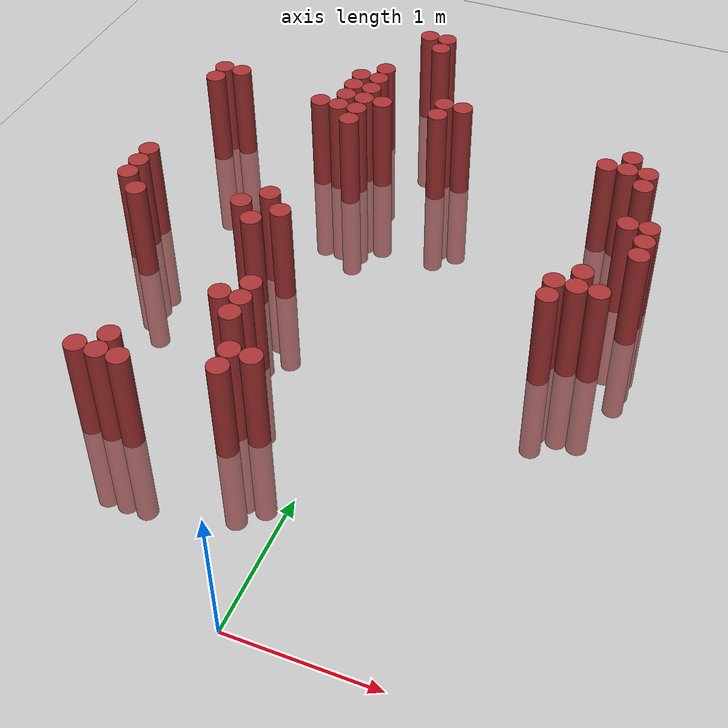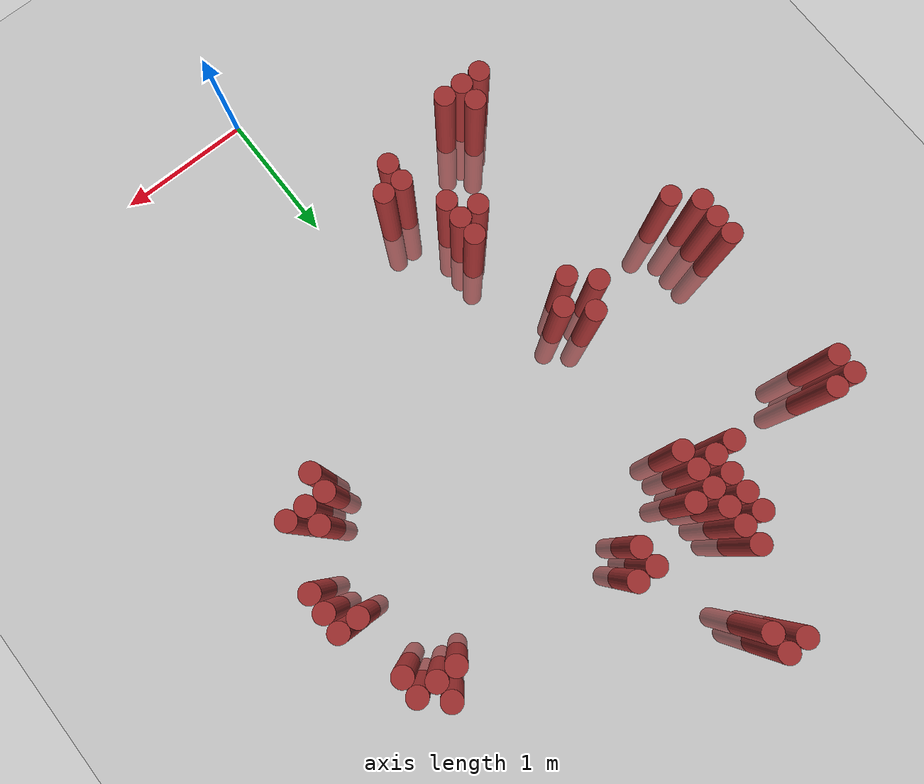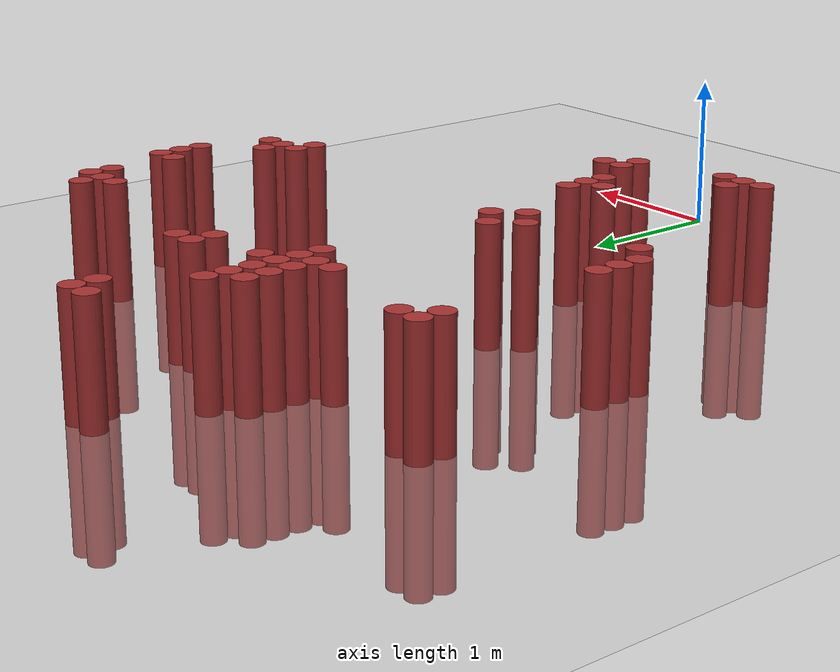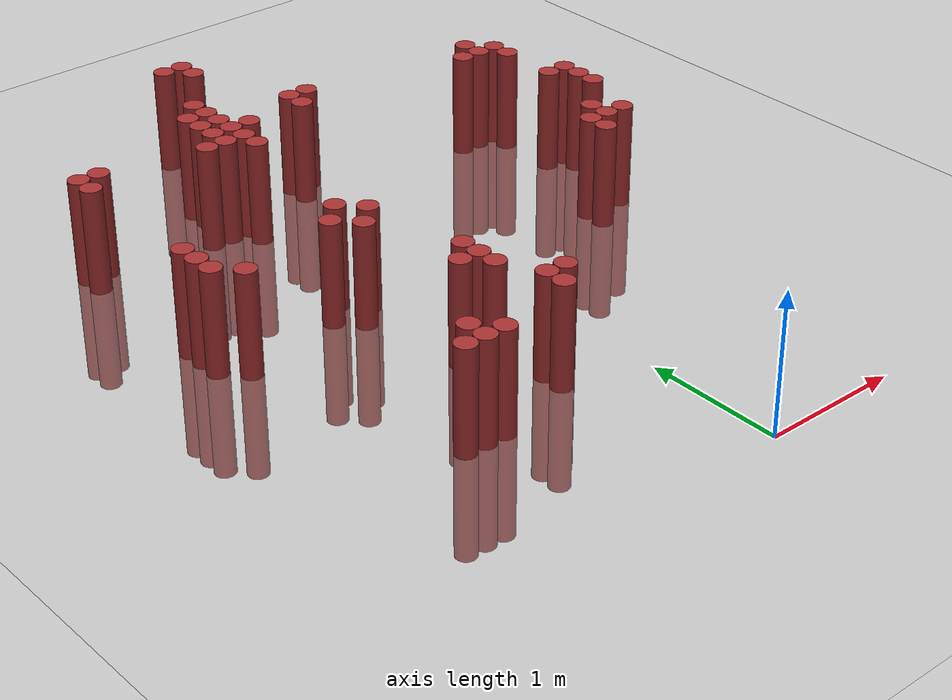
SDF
<sdf version="1.6">
 <world name="default">
  <model name="ground_plane">
   <static>1</static>
   <link name="link">
    <collision name="collision">
     <geometry><plane><normal>0 0 1</normal><size>100 100</size></plane></geometry>
     <surface><friction><ode><mu>100</mu><mu2>50</mu2></ode></friction></surface>
    </collision>
    <visual name="visual">
     <cast_shadows>0</cast_shadows>
     <geometry><plane><normal>0 0 1</normal><size>100 100</size></plane></geometry>
     <material>
      <script><uri>file://media/materials/scripts/gazebo.material</uri><name>Gazebo/Grey</name></script>
     </material>
    </visual>
   </link>
  </model>
  <model name="unit_cylinder_317">
   <static>1</static>
   <pose>-2.075000 2.725000 0.000000 0.000000 0.000000 0.000000</pose>
   <link name="link">
    <inertial>
     <mass>1</mass>
     <inertia><ixx>0.145833</ixx><ixy>0</ixy><ixz>0</ixz><iyy>0.145833</iyy><iyz>0</iyz><izz>0.125</izz></inertia>
    </inertial>
    <collision name="collision">
     <geometry><cylinder><radius>0.075000</radius><length>1.5</length></cylinder></geometry>
    </collision>
    <visual name="visual">
     <geometry><cylinder><radius>0.075000</radius><length>1.5</length></cylinder></geometry>
     <material>
      <ambient>0.648000 0.192000 0.192000 1</ambient>
      <diffuse>0.648000 0.192000 0.192000 1</diffuse>
     </material>
     <material>
      <script><name>Gazebo/Grey</name><uri>file://media/materials/scripts/gazebo.material</uri></script>
     </material>
    </visual>
   </link>
  </model>
  <model name="unit_cylinder_318">
   <static>1</static>
   <pose>-2.075000 2.875000 0.000000 0.000000 0.000000 0.000000</pose>
   <link name="link">
    <inertial>
     <mass>1</mass>
     <inertia><ixx>0.145833</ixx><ixy>0</ixy><ixz>0</ixz><iyy>0.145833</iyy><iyz>0</iyz><izz>0.125</izz></inertia>
    </inertial>
    <collision name="collision">
     <geometry><cylinder><radius>0.075000</radius><length>1.5</length></cylinder></geometry>
    </collision>
    <visual name="visual">
     <geometry><cylinder><radius>0.075000</radius><length>1.5</length></cylinder></geometry>
     <material>
      <ambient>0.648000 0.192000 0.192000 1</ambient>
      <diffuse>0.648000 0.192000 0.192000 1</diffuse>
     </material>
     <material>
      <script><name>Gazebo/Grey</name><uri>file://media/materials/scripts/gazebo.material</uri></script>
     </material>
    </visual>
   </link>
  </model>
  <model name="unit_cylinder_319">
   <static>1</static>
   <pose>-2.075000 3.025000 0.000000 0.000000 0.000000 0.000000</pose>
   <link name="link">
    <inertial>
     <mass>1</mass>
     <inertia><ixx>0.145833</ixx><ixy>0</ixy><ixz>0</ixz><iyy>0.145833</iyy><iyz>0</iyz><izz>0.125</izz></inertia>
    </inertial>
    <collision name="collision">
     <geometry><cylinder><radius>0.075000</radius><length>1.5</length></cylinder></geometry>
    </collision>
    <visual name="visual">
     <geometry><cylinder><radius>0.075000</radius><length>1.5</length></cylinder></geometry>
     <material>
      <ambient>0.648000 0.192000 0.192000 1</ambient>
      <diffuse>0.648000 0.192000 0.192000 1</diffuse>
     </material>
     <material>
      <script><name>Gazebo/Grey</name><uri>file://media/materials/scripts/gazebo.material</uri></script>
     </material>
    </visual>
   </link>
  </model>
  <model name="unit_cylinder_320">
   <static>1</static>
   <pose>-2.075000 4.075000 0.000000 0.000000 0.000000 0.000000</pose>
   <link name="link">
    <inertial>
     <mass>1</mass>
     <inertia><ixx>0.145833</ixx><ixy>0</ixy><ixz>0</ixz><iyy>0.145833</iyy><iyz>0</iyz><izz>0.125</izz></inertia>
    </inertial>
    <collision name="collision">
     <geometry><cylinder><radius>0.075000</radius><length>1.5</length></cylinder></geometry>
    </collision>
    <visual name="visual">
     <geometry><cylinder><radius>0.075000</radius><length>1.5</length></cylinder></geometry>
     <material>
      <ambient>0.648000 0.192000 0.192000 1</ambient>
      <diffuse>0.648000 0.192000 0.192000 1</diffuse>
     </material>
     <material>
      <script><name>Gazebo/Grey</name><uri>file://media/materials/scripts/gazebo.material</uri></script>
     </material>
    </visual>
   </link>
  </model>
  <model name="unit_cylinder_321">
   <static>1</static>
   <pose>-2.075000 4.225000 0.000000 0.000000 0.000000 0.000000</pose>
   <link name="link">
    <inertial>
     <mass>1</mass>
     <inertia><ixx>0.145833</ixx><ixy>0</ixy><ixz>0</ixz><iyy>0.145833</iyy><iyz>0</iyz><izz>0.125</izz></inertia>
    </inertial>
    <collision name="collision">
     <geometry><cylinder><radius>0.075000</radius><length>1.5</length></cylinder></geometry>
    </collision>
    <visual name="visual">
     <geometry><cylinder><radius>0.075000</radius><length>1.5</length></cylinder></geometry>
     <material>
      <ambient>0.648000 0.192000 0.192000 1</ambient>
      <diffuse>0.648000 0.192000 0.192000 1</diffuse>
     </material>
     <material>
      <script><name>Gazebo/Grey</name><uri>file://media/materials/scripts/gazebo.material</uri></script>
     </material>
    </visual>
   </link>
  </model>
  <model name="unit_cylinder_322">
   <static>1</static>
   <pose>-1.925000 2.575000 0.000000 0.000000 0.000000 0.000000</pose>
   <link name="link">
    <inertial>
     <mass>1</mass>
     <inertia><ixx>0.145833</ixx><ixy>0</ixy><ixz>0</ixz><iyy>0.145833</iyy><iyz>0</iyz><izz>0.125</izz></inertia>
    </inertial>
    <collision name="collision">
     <geometry><cylinder><radius>0.075000</radius><length>1.5</length></cylinder></geometry>
    </collision>
    <visual name="visual">
     <geometry><cylinder><radius>0.075000</radius><length>1.5</length></cylinder></geometry>
     <material>
      <ambient>0.648000 0.192000 0.192000 1</ambient>
      <diffuse>0.648000 0.192000 0.192000 1</diffuse>
     </material>
     <material>
      <script><name>Gazebo/Grey</name><uri>file://media/materials/scripts/gazebo.material</uri></script>
     </material>
    </visual>
   </link>
  </model>
  <model name="unit_cylinder_323">
   <static>1</static>
   <pose>-1.925000 4.225000 0.000000 0.000000 0.000000 0.000000</pose>
   <link name="link">
    <inertial>
     <mass>1</mass>
     <inertia><ixx>0.145833</ixx><ixy>0</ixy><ixz>0</ixz><iyy>0.145833</iyy><iyz>0</iyz><izz>0.125</izz></inertia>
    </inertial>
    <collision name="collision">
     <geometry><cylinder><radius>0.075000</radius><length>1.5</length></cylinder></geometry>
    </collision>
    <visual name="visual">
     <geometry><cylinder><radius>0.075000</radius><length>1.5</length></cylinder></geometry>
     <material>
      <ambient>0.648000 0.192000 0.192000 1</ambient>
      <diffuse>0.648000 0.192000 0.192000 1</diffuse>
     </material>
     <material>
      <script><name>Gazebo/Grey</name><uri>file://media/materials/scripts/gazebo.material</uri></script>
     </material>
    </visual>
   </link>
  </model>
  <model name="unit_cylinder_331">
   <static>1</static>
   <pose>-1.475000 1.075000 0.000000 0.000000 0.000000 0.000000</pose>
   <link name="link">
    <inertial>
     <mass>1</mass>
     <inertia><ixx>0.145833</ixx><ixy>0</ixy><ixz>0</ixz><iyy>0.145833</iyy><iyz>0</iyz><izz>0.125</izz></inertia>
    </inertial>
    <collision name="collision">
     <geometry><cylinder><radius>0.075000</radius><length>1.5</length></cylinder></geometry>
    </collision>
    <visual name="visual">
     <geometry><cylinder><radius>0.075000</radius><length>1.5</length></cylinder></geometry>
     <material>
      <ambient>0.648000 0.192000 0.192000 1</ambient>
      <diffuse>0.648000 0.192000 0.192000 1</diffuse>
     </material>
     <material>
      <script><name>Gazebo/Grey</name><uri>file://media/materials/scripts/gazebo.material</uri></script>
     </material>
    </visual>
   </link>
  </model>
  <model name="unit_cylinder_333">
   <static>1</static>
   <pose>-1.325000 1.075000 0.000000 0.000000 0.000000 0.000000</pose>
   <link name="link">
    <inertial>
     <mass>1</mass>
     <inertia><ixx>0.145833</ixx><ixy>0</ixy><ixz>0</ixz><iyy>0.145833</iyy><iyz>0</iyz><izz>0.125</izz></inertia>
    </inertial>
    <collision name="collision">
     <geometry><cylinder><radius>0.075000</radius><length>1.5</length></cylinder></geometry>
    </collision>
    <visual name="visual">
     <geometry><cylinder><radius>0.075000</radius><length>1.5</length></cylinder></geometry>
     <material>
      <ambient>0.648000 0.192000 0.192000 1</ambient>
      <diffuse>0.648000 0.192000 0.192000 1</diffuse>
     </material>
     <material>
      <script><name>Gazebo/Grey</name><uri>file://media/materials/scripts/gazebo.material</uri></script>
     </material>
    </visual>
   </link>
  </model>
  <model name="unit_cylinder_334">
   <static>1</static>
   <pose>-1.325000 1.225000 0.000000 0.000000 0.000000 0.000000</pose>
   <link name="link">
    <inertial>
     <mass>1</mass>
     <inertia><ixx>0.145833</ixx><ixy>0</ixy><ixz>0</ixz><iyy>0.145833</iyy><iyz>0</iyz><izz>0.125</izz></inertia>
    </inertial>
    <collision name="collision">
     <geometry><cylinder><radius>0.075000</radius><length>1.5</length></cylinder></geometry>
    </collision>
    <visual name="visual">
     <geometry><cylinder><radius>0.075000</radius><length>1.5</length></cylinder></geometry>
     <material>
      <ambient>0.648000 0.192000 0.192000 1</ambient>
      <diffuse>0.648000 0.192000 0.192000 1</diffuse>
     </material>
     <material>
      <script><name>Gazebo/Grey</name><uri>file://media/materials/scripts/gazebo.material</uri></script>
     </material>
    </visual>
   </link>
  </model>
  <model name="unit_cylinder_337">
   <static>1</static>
   <pose>-1.175000 1.075000 0.000000 0.000000 0.000000 0.000000</pose>
   <link name="link">
    <inertial>
     <mass>1</mass>
     <inertia><ixx>0.145833</ixx><ixy>0</ixy><ixz>0</ixz><iyy>0.145833</iyy><iyz>0</iyz><izz>0.125</izz></inertia>
    </inertial>
    <collision name="collision">
     <geometry><cylinder><radius>0.075000</radius><length>1.5</length></cylinder></geometry>
    </collision>
    <visual name="visual">
     <geometry><cylinder><radius>0.075000</radius><length>1.5</length></cylinder></geometry>
     <material>
      <ambient>0.648000 0.192000 0.192000 1</ambient>
      <diffuse>0.648000 0.192000 0.192000 1</diffuse>
     </material>
     <material>
      <script><name>Gazebo/Grey</name><uri>file://media/materials/scripts/gazebo.material</uri></script>
     </material>
    </visual>
   </link>
  </model>
  <model name="unit_cylinder_338">
   <static>1</static>
   <pose>-1.175000 2.725000 0.000000 0.000000 0.000000 0.000000</pose>
   <link name="link">
    <inertial>
     <mass>1</mass>
     <inertia><ixx>0.145833</ixx><ixy>0</ixy><ixz>0</ixz><iyy>0.145833</iyy><iyz>0</iyz><izz>0.125</izz></inertia>
    </inertial>
    <collision name="collision">
     <geometry><cylinder><radius>0.075000</radius><length>1.5</length></cylinder></geometry>
    </collision>
    <visual name="visual">
     <geometry><cylinder><radius>0.075000</radius><length>1.5</length></cylinder></geometry>
     <material>
      <ambient>0.648000 0.192000 0.192000 1</ambient>
      <diffuse>0.648000 0.192000 0.192000 1</diffuse>
     </material>
     <material>
      <script><name>Gazebo/Grey</name><uri>file://media/materials/scripts/gazebo.material</uri></script>
     </material>
    </visual>
   </link>
  </model>
  <model name="unit_cylinder_339">
   <static>1</static>
   <pose>-1.175000 4.075000 0.000000 0.000000 0.000000 0.000000</pose>
   <link name="link">
    <inertial>
     <mass>1</mass>
     <inertia><ixx>0.145833</ixx><ixy>0</ixy><ixz>0</ixz><iyy>0.145833</iyy><iyz>0</iyz><izz>0.125</izz></inertia>
    </inertial>
    <collision name="collision">
     <geometry><cylinder><radius>0.075000</radius><length>1.5</length></cylinder></geometry>
    </collision>
    <visual name="visual">
     <geometry><cylinder><radius>0.075000</radius><length>1.5</length></cylinder></geometry>
     <material>
      <ambient>0.648000 0.192000 0.192000 1</ambient>
      <diffuse>0.648000 0.192000 0.192000 1</diffuse>
     </material>
     <material>
      <script><name>Gazebo/Grey</name><uri>file://media/materials/scripts/gazebo.material</uri></script>
     </material>
    </visual>
   </link>
  </model>
  <model name="unit_cylinder_342">
   <static>1</static>
   <pose>-1.025000 2.575000 0.000000 0.000000 0.000000 0.000000</pose>
   <link name="link">
    <inertial>
     <mass>1</mass>
     <inertia><ixx>0.145833</ixx><ixy>0</ixy><ixz>0</ixz><iyy>0.145833</iyy><iyz>0</iyz><izz>0.125</izz></inertia>
    </inertial>
    <collision name="collision">
     <geometry><cylinder><radius>0.075000</radius><length>1.5</length></cylinder></geometry>
    </collision>
    <visual name="visual">
     <geometry><cylinder><radius>0.075000</radius><length>1.5</length></cylinder></geometry>
     <material>
      <ambient>0.648000 0.192000 0.192000 1</ambient>
      <diffuse>0.648000 0.192000 0.192000 1</diffuse>
     </material>
     <material>
      <script><name>Gazebo/Grey</name><uri>file://media/materials/scripts/gazebo.material</uri></script>
     </material>
    </visual>
   </link>
  </model>
  <model name="unit_cylinder_343">
   <static>1</static>
   <pose>-1.025000 2.875000 0.000000 0.000000 0.000000 0.000000</pose>
   <link name="link">
    <inertial>
     <mass>1</mass>
     <inertia><ixx>0.145833</ixx><ixy>0</ixy><ixz>0</ixz><iyy>0.145833</iyy><iyz>0</iyz><izz>0.125</izz></inertia>
    </inertial>
    <collision name="collision">
     <geometry><cylinder><radius>0.075000</radius><length>1.5</length></cylinder></geometry>
    </collision>
    <visual name="visual">
     <geometry><cylinder><radius>0.075000</radius><length>1.5</length></cylinder></geometry>
     <material>
      <ambient>0.648000 0.192000 0.192000 1</ambient>
      <diffuse>0.648000 0.192000 0.192000 1</diffuse>
     </material>
     <material>
      <script><name>Gazebo/Grey</name><uri>file://media/materials/scripts/gazebo.material</uri></script>
     </material>
    </visual>
   </link>
  </model>
  <model name="unit_cylinder_344">
   <static>1</static>
   <pose>-1.025000 4.075000 0.000000 0.000000 0.000000 0.000000</pose>
   <link name="link">
    <inertial>
     <mass>1</mass>
     <inertia><ixx>0.145833</ixx><ixy>0</ixy><ixz>0</ixz><iyy>0.145833</iyy><iyz>0</iyz><izz>0.125</izz></inertia>
    </inertial>
    <collision name="collision">
     <geometry><cylinder><radius>0.075000</radius><length>1.5</length></cylinder></geometry>
    </collision>
    <visual name="visual">
     <geometry><cylinder><radius>0.075000</radius><length>1.5</length></cylinder></geometry>
     <material>
      <ambient>0.648000 0.192000 0.192000 1</ambient>
      <diffuse>0.648000 0.192000 0.192000 1</diffuse>
     </material>
     <material>
      <script><name>Gazebo/Grey</name><uri>file://media/materials/scripts/gazebo.material</uri></script>
     </material>
    </visual>
   </link>
  </model>
  <model name="unit_cylinder_345">
   <static>1</static>
   <pose>-1.025000 4.225000 0.000000 0.000000 0.000000 0.000000</pose>
   <link name="link">
    <inertial>
     <mass>1</mass>
     <inertia><ixx>0.145833</ixx><ixy>0</ixy><ixz>0</ixz><iyy>0.145833</iyy><iyz>0</iyz><izz>0.125</izz></inertia>
    </inertial>
    <collision name="collision">
     <geometry><cylinder><radius>0.075000</radius><length>1.5</length></cylinder></geometry>
    </collision>
    <visual name="visual">
     <geometry><cylinder><radius>0.075000</radius><length>1.5</length></cylinder></geometry>
     <material>
      <ambient>0.648000 0.192000 0.192000 1</ambient>
      <diffuse>0.648000 0.192000 0.192000 1</diffuse>
     </material>
     <material>
      <script><name>Gazebo/Grey</name><uri>file://media/materials/scripts/gazebo.material</uri></script>
     </material>
    </visual>
   </link>
  </model>
  <model name="unit_cylinder_346">
   <static>1</static>
   <pose>-1.025000 4.375000 0.000000 0.000000 0.000000 0.000000</pose>
   <link name="link">
    <inertial>
     <mass>1</mass>
     <inertia><ixx>0.145833</ixx><ixy>0</ixy><ixz>0</ixz><iyy>0.145833</iyy><iyz>0</iyz><izz>0.125</izz></inertia>
    </inertial>
    <collision name="collision">
     <geometry><cylinder><radius>0.075000</radius><length>1.5</length></cylinder></geometry>
    </collision>
    <visual name="visual">
     <geometry><cylinder><radius>0.075000</radius><length>1.5</length></cylinder></geometry>
     <material>
      <ambient>0.648000 0.192000 0.192000 1</ambient>
      <diffuse>0.648000 0.192000 0.192000 1</diffuse>
     </material>
     <material>
      <script><name>Gazebo/Grey</name><uri>file://media/materials/scripts/gazebo.material</uri></script>
     </material>
    </visual>
   </link>
  </model>
  <model name="unit_cylinder_347">
   <static>1</static>
   <pose>-1.025000 4.525000 0.000000 0.000000 0.000000 0.000000</pose>
   <link name="link">
    <inertial>
     <mass>1</mass>
     <inertia><ixx>0.145833</ixx><ixy>0</ixy><ixz>0</ixz><iyy>0.145833</iyy><iyz>0</iyz><izz>0.125</izz></inertia>
    </inertial>
    <collision name="collision">
     <geometry><cylinder><radius>0.075000</radius><length>1.5</length></cylinder></geometry>
    </collision>
    <visual name="visual">
     <geometry><cylinder><radius>0.075000</radius><length>1.5</length></cylinder></geometry>
     <material>
      <ambient>0.648000 0.192000 0.192000 1</ambient>
      <diffuse>0.648000 0.192000 0.192000 1</diffuse>
     </material>
     <material>
      <script><name>Gazebo/Grey</name><uri>file://media/materials/scripts/gazebo.material</uri></script>
     </material>
    </visual>
   </link>
  </model>
  <model name="unit_cylinder_348">
   <static>1</static>
   <pose>-0.875000 1.825000 0.000000 0.000000 0.000000 0.000000</pose>
   <link name="link">
    <inertial>
     <mass>1</mass>
     <inertia><ixx>0.145833</ixx><ixy>0</ixy><ixz>0</ixz><iyy>0.145833</iyy><iyz>0</iyz><izz>0.125</izz></inertia>
    </inertial>
    <collision name="collision">
     <geometry><cylinder><radius>0.075000</radius><length>1.5</length></cylinder></geometry>
    </collision>
    <visual name="visual">
     <geometry><cylinder><radius>0.075000</radius><length>1.5</length></cylinder></geometry>
     <material>
      <ambient>0.648000 0.192000 0.192000 1</ambient>
      <diffuse>0.648000 0.192000 0.192000 1</diffuse>
     </material>
     <material>
      <script><name>Gazebo/Grey</name><uri>file://media/materials/scripts/gazebo.material</uri></script>
     </material>
    </visual>
   </link>
  </model>
  <model name="unit_cylinder_349">
   <static>1</static>
   <pose>-0.875000 2.725000 0.000000 0.000000 0.000000 0.000000</pose>
   <link name="link">
    <inertial>
     <mass>1</mass>
     <inertia><ixx>0.145833</ixx><ixy>0</ixy><ixz>0</ixz><iyy>0.145833</iyy><iyz>0</iyz><izz>0.125</izz></inertia>
    </inertial>
    <collision name="collision">
     <geometry><cylinder><radius>0.075000</radius><length>1.5</length></cylinder></geometry>
    </collision>
    <visual name="visual">
     <geometry><cylinder><radius>0.075000</radius><length>1.5</length></cylinder></geometry>
     <material>
      <ambient>0.648000 0.192000 0.192000 1</ambient>
      <diffuse>0.648000 0.192000 0.192000 1</diffuse>
     </material>
     <material>
      <script><name>Gazebo/Grey</name><uri>file://media/materials/scripts/gazebo.material</uri></script>
     </material>
    </visual>
   </link>
  </model>
  <model name="unit_cylinder_350">
   <static>1</static>
   <pose>-0.875000 3.925000 0.000000 0.000000 0.000000 0.000000</pose>
   <link name="link">
    <inertial>
     <mass>1</mass>
     <inertia><ixx>0.145833</ixx><ixy>0</ixy><ixz>0</ixz><iyy>0.145833</iyy><iyz>0</iyz><izz>0.125</izz></inertia>
    </inertial>
    <collision name="collision">
     <geometry><cylinder><radius>0.075000</radius><length>1.5</length></cylinder></geometry>
    </collision>
    <visual name="visual">
     <geometry><cylinder><radius>0.075000</radius><length>1.5</length></cylinder></geometry>
     <material>
      <ambient>0.648000 0.192000 0.192000 1</ambient>
      <diffuse>0.648000 0.192000 0.192000 1</diffuse>
     </material>
     <material>
      <script><name>Gazebo/Grey</name><uri>file://media/materials/scripts/gazebo.material</uri></script>
     </material>
    </visual>
   </link>
  </model>
  <model name="unit_cylinder_351">
   <static>1</static>
   <pose>-0.875000 4.075000 0.000000 0.000000 0.000000 0.000000</pose>
   <link name="link">
    <inertial>
     <mass>1</mass>
     <inertia><ixx>0.145833</ixx><ixy>0</ixy><ixz>0</ixz><iyy>0.145833</iyy><iyz>0</iyz><izz>0.125</izz></inertia>
    </inertial>
    <collision name="collision">
     <geometry><cylinder><radius>0.075000</radius><length>1.5</length></cylinder></geometry>
    </collision>
    <visual name="visual">
     <geometry><cylinder><radius>0.075000</radius><length>1.5</length></cylinder></geometry>
     <material>
      <ambient>0.648000 0.192000 0.192000 1</ambient>
      <diffuse>0.648000 0.192000 0.192000 1</diffuse>
     </material>
     <material>
      <script><name>Gazebo/Grey</name><uri>file://media/materials/scripts/gazebo.material</uri></script>
     </material>
    </visual>
   </link>
  </model>
  <model name="unit_cylinder_352">
   <static>1</static>
   <pose>-0.875000 4.225000 0.000000 0.000000 0.000000 0.000000</pose>
   <link name="link">
    <inertial>
     <mass>1</mass>
     <inertia><ixx>0.145833</ixx><ixy>0</ixy><ixz>0</ixz><iyy>0.145833</iyy><iyz>0</iyz><izz>0.125</izz></inertia>
    </inertial>
    <collision name="collision">
     <geometry><cylinder><radius>0.075000</radius><length>1.5</length></cylinder></geometry>
    </collision>
    <visual name="visual">
     <geometry><cylinder><radius>0.075000</radius><length>1.5</length></cylinder></geometry>
     <material>
      <ambient>0.648000 0.192000 0.192000 1</ambient>
      <diffuse>0.648000 0.192000 0.192000 1</diffuse>
     </material>
     <material>
      <script><name>Gazebo/Grey</name><uri>file://media/materials/scripts/gazebo.material</uri></script>
     </material>
    </visual>
   </link>
  </model>
  <model name="unit_cylinder_353">
   <static>1</static>
   <pose>-0.875000 4.375000 0.000000 0.000000 0.000000 0.000000</pose>
   <link name="link">
    <inertial>
     <mass>1</mass>
     <inertia><ixx>0.145833</ixx><ixy>0</ixy><ixz>0</ixz><iyy>0.145833</iyy><iyz>0</iyz><izz>0.125</izz></inertia>
    </inertial>
    <collision name="collision">
     <geometry><cylinder><radius>0.075000</radius><length>1.5</length></cylinder></geometry>
    </collision>
    <visual name="visual">
     <geometry><cylinder><radius>0.075000</radius><length>1.5</length></cylinder></geometry>
     <material>
      <ambient>0.648000 0.192000 0.192000 1</ambient>
      <diffuse>0.648000 0.192000 0.192000 1</diffuse>
     </material>
     <material>
      <script><name>Gazebo/Grey</name><uri>file://media/materials/scripts/gazebo.material</uri></script>
     </material>
    </visual>
   </link>
  </model>
  <model name="unit_cylinder_354">
   <static>1</static>
   <pose>-0.875000 4.525000 0.000000 0.000000 0.000000 0.000000</pose>
   <link name="link">
    <inertial>
     <mass>1</mass>
     <inertia><ixx>0.145833</ixx><ixy>0</ixy><ixz>0</ixz><iyy>0.145833</iyy><iyz>0</iyz><izz>0.125</izz></inertia>
    </inertial>
    <collision name="collision">
     <geometry><cylinder><radius>0.075000</radius><length>1.5</length></cylinder></geometry>
    </collision>
    <visual name="visual">
     <geometry><cylinder><radius>0.075000</radius><length>1.5</length></cylinder></geometry>
     <material>
      <ambient>0.648000 0.192000 0.192000 1</ambient>
      <diffuse>0.648000 0.192000 0.192000 1</diffuse>
     </material>
     <material>
      <script><name>Gazebo/Grey</name><uri>file://media/materials/scripts/gazebo.material</uri></script>
     </material>
    </visual>
   </link>
  </model>
  <model name="unit_cylinder_355">
   <static>1</static>
   <pose>-0.875000 4.675000 0.000000 0.000000 0.000000 0.000000</pose>
   <link name="link">
    <inertial>
     <mass>1</mass>
     <inertia><ixx>0.145833</ixx><ixy>0</ixy><ixz>0</ixz><iyy>0.145833</iyy><iyz>0</iyz><izz>0.125</izz></inertia>
    </inertial>
    <collision name="collision">
     <geometry><cylinder><radius>0.075000</radius><length>1.5</length></cylinder></geometry>
    </collision>
    <visual name="visual">
     <geometry><cylinder><radius>0.075000</radius><length>1.5</length></cylinder></geometry>
     <material>
      <ambient>0.648000 0.192000 0.192000 1</ambient>
      <diffuse>0.648000 0.192000 0.192000 1</diffuse>
     </material>
     <material>
      <script><name>Gazebo/Grey</name><uri>file://media/materials/scripts/gazebo.material</uri></script>
     </material>
    </visual>
   </link>
  </model>
  <model name="unit_cylinder_359">
   <static>1</static>
   <pose>-0.725000 1.675000 0.000000 0.000000 0.000000 0.000000</pose>
   <link name="link">
    <inertial>
     <mass>1</mass>
     <inertia><ixx>0.145833</ixx><ixy>0</ixy><ixz>0</ixz><iyy>0.145833</iyy><iyz>0</iyz><izz>0.125</izz></inertia>
    </inertial>
    <collision name="collision">
     <geometry><cylinder><radius>0.075000</radius><length>1.5</length></cylinder></geometry>
    </collision>
    <visual name="visual">
     <geometry><cylinder><radius>0.075000</radius><length>1.5</length></cylinder></geometry>
     <material>
      <ambient>0.648000 0.192000 0.192000 1</ambient>
      <diffuse>0.648000 0.192000 0.192000 1</diffuse>
     </material>
     <material>
      <script><name>Gazebo/Grey</name><uri>file://media/materials/scripts/gazebo.material</uri></script>
     </material>
    </visual>
   </link>
  </model>
  <model name="unit_cylinder_360">
   <static>1</static>
   <pose>-0.725000 1.825000 0.000000 0.000000 0.000000 0.000000</pose>
   <link name="link">
    <inertial>
     <mass>1</mass>
     <inertia><ixx>0.145833</ixx><ixy>0</ixy><ixz>0</ixz><iyy>0.145833</iyy><iyz>0</iyz><izz>0.125</izz></inertia>
    </inertial>
    <collision name="collision">
     <geometry><cylinder><radius>0.075000</radius><length>1.5</length></cylinder></geometry>
    </collision>
    <visual name="visual">
     <geometry><cylinder><radius>0.075000</radius><length>1.5</length></cylinder></geometry>
     <material>
      <ambient>0.648000 0.192000 0.192000 1</ambient>
      <diffuse>0.648000 0.192000 0.192000 1</diffuse>
     </material>
     <material>
      <script><name>Gazebo/Grey</name><uri>file://media/materials/scripts/gazebo.material</uri></script>
     </material>
    </visual>
   </link>
  </model>
  <model name="unit_cylinder_361">
   <static>1</static>
   <pose>-0.725000 1.975000 0.000000 0.000000 0.000000 0.000000</pose>
   <link name="link">
    <inertial>
     <mass>1</mass>
     <inertia><ixx>0.145833</ixx><ixy>0</ixy><ixz>0</ixz><iyy>0.145833</iyy><iyz>0</iyz><izz>0.125</izz></inertia>
    </inertial>
    <collision name="collision">
     <geometry><cylinder><radius>0.075000</radius><length>1.5</length></cylinder></geometry>
    </collision>
    <visual name="visual">
     <geometry><cylinder><radius>0.075000</radius><length>1.5</length></cylinder></geometry>
     <material>
      <ambient>0.648000 0.192000 0.192000 1</ambient>
      <diffuse>0.648000 0.192000 0.192000 1</diffuse>
     </material>
     <material>
      <script><name>Gazebo/Grey</name><uri>file://media/materials/scripts/gazebo.material</uri></script>
     </material>
    </visual>
   </link>
  </model>
  <model name="unit_cylinder_362">
   <static>1</static>
   <pose>-0.725000 4.225000 0.000000 0.000000 0.000000 0.000000</pose>
   <link name="link">
    <inertial>
     <mass>1</mass>
     <inertia><ixx>0.145833</ixx><ixy>0</ixy><ixz>0</ixz><iyy>0.145833</iyy><iyz>0</iyz><izz>0.125</izz></inertia>
    </inertial>
    <collision name="collision">
     <geometry><cylinder><radius>0.075000</radius><length>1.5</length></cylinder></geometry>
    </collision>
    <visual name="visual">
     <geometry><cylinder><radius>0.075000</radius><length>1.5</length></cylinder></geometry>
     <material>
      <ambient>0.648000 0.192000 0.192000 1</ambient>
      <diffuse>0.648000 0.192000 0.192000 1</diffuse>
     </material>
     <material>
      <script><name>Gazebo/Grey</name><uri>file://media/materials/scripts/gazebo.material</uri></script>
     </material>
    </visual>
   </link>
  </model>
  <model name="unit_cylinder_363">
   <static>1</static>
   <pose>-0.725000 5.275000 0.000000 0.000000 0.000000 0.000000</pose>
   <link name="link">
    <inertial>
     <mass>1</mass>
     <inertia><ixx>0.145833</ixx><ixy>0</ixy><ixz>0</ixz><iyy>0.145833</iyy><iyz>0</iyz><izz>0.125</izz></inertia>
    </inertial>
    <collision name="collision">
     <geometry><cylinder><radius>0.075000</radius><length>1.5</length></cylinder></geometry>
    </collision>
    <visual name="visual">
     <geometry><cylinder><radius>0.075000</radius><length>1.5</length></cylinder></geometry>
     <material>
      <ambient>0.648000 0.192000 0.192000 1</ambient>
      <diffuse>0.648000 0.192000 0.192000 1</diffuse>
     </material>
     <material>
      <script><name>Gazebo/Grey</name><uri>file://media/materials/scripts/gazebo.material</uri></script>
     </material>
    </visual>
   </link>
  </model>
  <model name="unit_cylinder_367">
   <static>1</static>
   <pose>-0.575000 1.225000 0.000000 0.000000 0.000000 0.000000</pose>
   <link name="link">
    <inertial>
     <mass>1</mass>
     <inertia><ixx>0.145833</ixx><ixy>0</ixy><ixz>0</ixz><iyy>0.145833</iyy><iyz>0</iyz><izz>0.125</izz></inertia>
    </inertial>
    <collision name="collision">
     <geometry><cylinder><radius>0.075000</radius><length>1.5</length></cylinder></geometry>
    </collision>
    <visual name="visual">
     <geometry><cylinder><radius>0.075000</radius><length>1.5</length></cylinder></geometry>
     <material>
      <ambient>0.648000 0.192000 0.192000 1</ambient>
      <diffuse>0.648000 0.192000 0.192000 1</diffuse>
     </material>
     <material>
      <script><name>Gazebo/Grey</name><uri>file://media/materials/scripts/gazebo.material</uri></script>
     </material>
    </visual>
   </link>
  </model>
  <model name="unit_cylinder_368">
   <static>1</static>
   <pose>-0.575000 1.375000 0.000000 0.000000 0.000000 0.000000</pose>
   <link name="link">
    <inertial>
     <mass>1</mass>
     <inertia><ixx>0.145833</ixx><ixy>0</ixy><ixz>0</ixz><iyy>0.145833</iyy><iyz>0</iyz><izz>0.125</izz></inertia>
    </inertial>
    <collision name="collision">
     <geometry><cylinder><radius>0.075000</radius><length>1.5</length></cylinder></geometry>
    </collision>
    <visual name="visual">
     <geometry><cylinder><radius>0.075000</radius><length>1.5</length></cylinder></geometry>
     <material>
      <ambient>0.648000 0.192000 0.192000 1</ambient>
      <diffuse>0.648000 0.192000 0.192000 1</diffuse>
     </material>
     <material>
      <script><name>Gazebo/Grey</name><uri>file://media/materials/scripts/gazebo.material</uri></script>
     </material>
    </visual>
   </link>
  </model>
  <model name="unit_cylinder_369">
   <static>1</static>
   <pose>-0.575000 5.125000 0.000000 0.000000 0.000000 0.000000</pose>
   <link name="link">
    <inertial>
     <mass>1</mass>
     <inertia><ixx>0.145833</ixx><ixy>0</ixy><ixz>0</ixz><iyy>0.145833</iyy><iyz>0</iyz><izz>0.125</izz></inertia>
    </inertial>
    <collision name="collision">
     <geometry><cylinder><radius>0.075000</radius><length>1.5</length></cylinder></geometry>
    </collision>
    <visual name="visual">
     <geometry><cylinder><radius>0.075000</radius><length>1.5</length></cylinder></geometry>
     <material>
      <ambient>0.648000 0.192000 0.192000 1</ambient>
      <diffuse>0.648000 0.192000 0.192000 1</diffuse>
     </material>
     <material>
      <script><name>Gazebo/Grey</name><uri>file://media/materials/scripts/gazebo.material</uri></script>
     </material>
    </visual>
   </link>
  </model>
  <model name="unit_cylinder_370">
   <static>1</static>
   <pose>-0.575000 5.275000 0.000000 0.000000 0.000000 0.000000</pose>
   <link name="link">
    <inertial>
     <mass>1</mass>
     <inertia><ixx>0.145833</ixx><ixy>0</ixy><ixz>0</ixz><iyy>0.145833</iyy><iyz>0</iyz><izz>0.125</izz></inertia>
    </inertial>
    <collision name="collision">
     <geometry><cylinder><radius>0.075000</radius><length>1.5</length></cylinder></geometry>
    </collision>
    <visual name="visual">
     <geometry><cylinder><radius>0.075000</radius><length>1.5</length></cylinder></geometry>
     <material>
      <ambient>0.648000 0.192000 0.192000 1</ambient>
      <diffuse>0.648000 0.192000 0.192000 1</diffuse>
     </material>
     <material>
      <script><name>Gazebo/Grey</name><uri>file://media/materials/scripts/gazebo.material</uri></script>
     </material>
    </visual>
   </link>
  </model>
  <model name="unit_cylinder_373">
   <static>1</static>
   <pose>-0.425000 1.375000 0.000000 0.000000 0.000000 0.000000</pose>
   <link name="link">
    <inertial>
     <mass>1</mass>
     <inertia><ixx>0.145833</ixx><ixy>0</ixy><ixz>0</ixz><iyy>0.145833</iyy><iyz>0</iyz><izz>0.125</izz></inertia>
    </inertial>
    <collision name="collision">
     <geometry><cylinder><radius>0.075000</radius><length>1.5</length></cylinder></geometry>
    </collision>
    <visual name="visual">
     <geometry><cylinder><radius>0.075000</radius><length>1.5</length></cylinder></geometry>
     <material>
      <ambient>0.648000 0.192000 0.192000 1</ambient>
      <diffuse>0.648000 0.192000 0.192000 1</diffuse>
     </material>
     <material>
      <script><name>Gazebo/Grey</name><uri>file://media/materials/scripts/gazebo.material</uri></script>
     </material>
    </visual>
   </link>
  </model>
  <model name="unit_cylinder_377">
   <static>1</static>
   <pose>-0.275000 4.225000 0.000000 0.000000 0.000000 0.000000</pose>
   <link name="link">
    <inertial>
     <mass>1</mass>
     <inertia><ixx>0.145833</ixx><ixy>0</ixy><ixz>0</ixz><iyy>0.145833</iyy><iyz>0</iyz><izz>0.125</izz></inertia>
    </inertial>
    <collision name="collision">
     <geometry><cylinder><radius>0.075000</radius><length>1.5</length></cylinder></geometry>
    </collision>
    <visual name="visual">
     <geometry><cylinder><radius>0.075000</radius><length>1.5</length></cylinder></geometry>
     <material>
      <ambient>0.648000 0.192000 0.192000 1</ambient>
      <diffuse>0.648000 0.192000 0.192000 1</diffuse>
     </material>
     <material>
      <script><name>Gazebo/Grey</name><uri>file://media/materials/scripts/gazebo.material</uri></script>
     </material>
    </visual>
   </link>
  </model>
  <model name="unit_cylinder_378">
   <static>1</static>
   <pose>-0.275000 4.375000 0.000000 0.000000 0.000000 0.000000</pose>
   <link name="link">
    <inertial>
     <mass>1</mass>
     <inertia><ixx>0.145833</ixx><ixy>0</ixy><ixz>0</ixz><iyy>0.145833</iyy><iyz>0</iyz><izz>0.125</izz></inertia>
    </inertial>
    <collision name="collision">
     <geometry><cylinder><radius>0.075000</radius><length>1.5</length></cylinder></geometry>
    </collision>
    <visual name="visual">
     <geometry><cylinder><radius>0.075000</radius><length>1.5</length></cylinder></geometry>
     <material>
      <ambient>0.648000 0.192000 0.192000 1</ambient>
      <diffuse>0.648000 0.192000 0.192000 1</diffuse>
     </material>
     <material>
      <script><name>Gazebo/Grey</name><uri>file://media/materials/scripts/gazebo.material</uri></script>
     </material>
    </visual>
   </link>
  </model>
  <model name="unit_cylinder_381">
   <static>1</static>
   <pose>-0.125000 4.375000 0.000000 0.000000 0.000000 0.000000</pose>
   <link name="link">
    <inertial>
     <mass>1</mass>
     <inertia><ixx>0.145833</ixx><ixy>0</ixy><ixz>0</ixz><iyy>0.145833</iyy><iyz>0</iyz><izz>0.125</izz></inertia>
    </inertial>
    <collision name="collision">
     <geometry><cylinder><radius>0.075000</radius><length>1.5</length></cylinder></geometry>
    </collision>
    <visual name="visual">
     <geometry><cylinder><radius>0.075000</radius><length>1.5</length></cylinder></geometry>
     <material>
      <ambient>0.648000 0.192000 0.192000 1</ambient>
      <diffuse>0.648000 0.192000 0.192000 1</diffuse>
     </material>
     <material>
      <script><name>Gazebo/Grey</name><uri>file://media/materials/scripts/gazebo.material</uri></script>
     </material>
    </visual>
   </link>
  </model>
  <model name="unit_cylinder_403">
   <static>1</static>
   <pose>1.075000 2.575000 0.000000 0.000000 0.000000 0.000000</pose>
   <link name="link">
    <inertial>
     <mass>1</mass>
     <inertia><ixx>0.145833</ixx><ixy>0</ixy><ixz>0</ixz><iyy>0.145833</iyy><iyz>0</iyz><izz>0.125</izz></inertia>
    </inertial>
    <collision name="collision">
     <geometry><cylinder><radius>0.075000</radius><length>1.5</length></cylinder></geometry>
    </collision>
    <visual name="visual">
     <geometry><cylinder><radius>0.075000</radius><length>1.5</length></cylinder></geometry>
     <material>
      <ambient>0.648000 0.192000 0.192000 1</ambient>
      <diffuse>0.648000 0.192000 0.192000 1</diffuse>
     </material>
     <material>
      <script><name>Gazebo/Grey</name><uri>file://media/materials/scripts/gazebo.material</uri></script>
     </material>
    </visual>
   </link>
  </model>
  <model name="unit_cylinder_404">
   <static>1</static>
   <pose>1.075000 2.725000 0.000000 0.000000 0.000000 0.000000</pose>
   <link name="link">
    <inertial>
     <mass>1</mass>
     <inertia><ixx>0.145833</ixx><ixy>0</ixy><ixz>0</ixz><iyy>0.145833</iyy><iyz>0</iyz><izz>0.125</izz></inertia>
    </inertial>
    <collision name="collision">
     <geometry><cylinder><radius>0.075000</radius><length>1.5</length></cylinder></geometry>
    </collision>
    <visual name="visual">
     <geometry><cylinder><radius>0.075000</radius><length>1.5</length></cylinder></geometry>
     <material>
      <ambient>0.648000 0.192000 0.192000 1</ambient>
      <diffuse>0.648000 0.192000 0.192000 1</diffuse>
     </material>
     <material>
      <script><name>Gazebo/Grey</name><uri>file://media/materials/scripts/gazebo.material</uri></script>
     </material>
    </visual>
   </link>
  </model>
  <model name="unit_cylinder_405">
   <static>1</static>
   <pose>1.075000 4.075000 0.000000 0.000000 0.000000 0.000000</pose>
   <link name="link">
    <inertial>
     <mass>1</mass>
     <inertia><ixx>0.145833</ixx><ixy>0</ixy><ixz>0</ixz><iyy>0.145833</iyy><iyz>0</iyz><izz>0.125</izz></inertia>
    </inertial>
    <collision name="collision">
     <geometry><cylinder><radius>0.075000</radius><length>1.5</length></cylinder></geometry>
    </collision>
    <visual name="visual">
     <geometry><cylinder><radius>0.075000</radius><length>1.5</length></cylinder></geometry>
     <material>
      <ambient>0.648000 0.192000 0.192000 1</ambient>
      <diffuse>0.648000 0.192000 0.192000 1</diffuse>
     </material>
     <material>
      <script><name>Gazebo/Grey</name><uri>file://media/materials/scripts/gazebo.material</uri></script>
     </material>
    </visual>
   </link>
  </model>
  <model name="unit_cylinder_412">
   <static>1</static>
   <pose>1.225000 2.725000 0.000000 0.000000 0.000000 0.000000</pose>
   <link name="link">
    <inertial>
     <mass>1</mass>
     <inertia><ixx>0.145833</ixx><ixy>0</ixy><ixz>0</ixz><iyy>0.145833</iyy><iyz>0</iyz><izz>0.125</izz></inertia>
    </inertial>
    <collision name="collision">
     <geometry><cylinder><radius>0.075000</radius><length>1.5</length></cylinder></geometry>
    </collision>
    <visual name="visual">
     <geometry><cylinder><radius>0.075000</radius><length>1.5</length></cylinder></geometry>
     <material>
      <ambient>0.648000 0.192000 0.192000 1</ambient>
      <diffuse>0.648000 0.192000 0.192000 1</diffuse>
     </material>
     <material>
      <script><name>Gazebo/Grey</name><uri>file://media/materials/scripts/gazebo.material</uri></script>
     </material>
    </visual>
   </link>
  </model>
  <model name="unit_cylinder_413">
   <static>1</static>
   <pose>1.225000 2.875000 0.000000 0.000000 0.000000 0.000000</pose>
   <link name="link">
    <inertial>
     <mass>1</mass>
     <inertia><ixx>0.145833</ixx><ixy>0</ixy><ixz>0</ixz><iyy>0.145833</iyy><iyz>0</iyz><izz>0.125</izz></inertia>
    </inertial>
    <collision name="collision">
     <geometry><cylinder><radius>0.075000</radius><length>1.5</length></cylinder></geometry>
    </collision>
    <visual name="visual">
     <geometry><cylinder><radius>0.075000</radius><length>1.5</length></cylinder></geometry>
     <material>
      <ambient>0.648000 0.192000 0.192000 1</ambient>
      <diffuse>0.648000 0.192000 0.192000 1</diffuse>
     </material>
     <material>
      <script><name>Gazebo/Grey</name><uri>file://media/materials/scripts/gazebo.material</uri></script>
     </material>
    </visual>
   </link>
  </model>
  <model name="unit_cylinder_414">
   <static>1</static>
   <pose>1.225000 4.075000 0.000000 0.000000 0.000000 0.000000</pose>
   <link name="link">
    <inertial>
     <mass>1</mass>
     <inertia><ixx>0.145833</ixx><ixy>0</ixy><ixz>0</ixz><iyy>0.145833</iyy><iyz>0</iyz><izz>0.125</izz></inertia>
    </inertial>
    <collision name="collision">
     <geometry><cylinder><radius>0.075000</radius><length>1.5</length></cylinder></geometry>
    </collision>
    <visual name="visual">
     <geometry><cylinder><radius>0.075000</radius><length>1.5</length></cylinder></geometry>
     <material>
      <ambient>0.648000 0.192000 0.192000 1</ambient>
      <diffuse>0.648000 0.192000 0.192000 1</diffuse>
     </material>
     <material>
      <script><name>Gazebo/Grey</name><uri>file://media/materials/scripts/gazebo.material</uri></script>
     </material>
    </visual>
   </link>
  </model>
  <model name="unit_cylinder_415">
   <static>1</static>
   <pose>1.225000 4.225000 0.000000 0.000000 0.000000 0.000000</pose>
   <link name="link">
    <inertial>
     <mass>1</mass>
     <inertia><ixx>0.145833</ixx><ixy>0</ixy><ixz>0</ixz><iyy>0.145833</iyy><iyz>0</iyz><izz>0.125</izz></inertia>
    </inertial>
    <collision name="collision">
     <geometry><cylinder><radius>0.075000</radius><length>1.5</length></cylinder></geometry>
    </collision>
    <visual name="visual">
     <geometry><cylinder><radius>0.075000</radius><length>1.5</length></cylinder></geometry>
     <material>
      <ambient>0.648000 0.192000 0.192000 1</ambient>
      <diffuse>0.648000 0.192000 0.192000 1</diffuse>
     </material>
     <material>
      <script><name>Gazebo/Grey</name><uri>file://media/materials/scripts/gazebo.material</uri></script>
     </material>
    </visual>
   </link>
  </model>
  <model name="unit_cylinder_418">
   <static>1</static>
   <pose>1.375000 2.725000 0.000000 0.000000 0.000000 0.000000</pose>
   <link name="link">
    <inertial>
     <mass>1</mass>
     <inertia><ixx>0.145833</ixx><ixy>0</ixy><ixz>0</ixz><iyy>0.145833</iyy><iyz>0</iyz><izz>0.125</izz></inertia>
    </inertial>
    <collision name="collision">
     <geometry><cylinder><radius>0.075000</radius><length>1.5</length></cylinder></geometry>
    </collision>
    <visual name="visual">
     <geometry><cylinder><radius>0.075000</radius><length>1.5</length></cylinder></geometry>
     <material>
      <ambient>0.648000 0.192000 0.192000 1</ambient>
      <diffuse>0.648000 0.192000 0.192000 1</diffuse>
     </material>
     <material>
      <script><name>Gazebo/Grey</name><uri>file://media/materials/scripts/gazebo.material</uri></script>
     </material>
    </visual>
   </link>
  </model>
  <model name="unit_cylinder_419">
   <static>1</static>
   <pose>1.375000 3.475000 0.000000 0.000000 0.000000 0.000000</pose>
   <link name="link">
    <inertial>
     <mass>1</mass>
     <inertia><ixx>0.145833</ixx><ixy>0</ixy><ixz>0</ixz><iyy>0.145833</iyy><iyz>0</iyz><izz>0.125</izz></inertia>
    </inertial>
    <collision name="collision">
     <geometry><cylinder><radius>0.075000</radius><length>1.5</length></cylinder></geometry>
    </collision>
    <visual name="visual">
     <geometry><cylinder><radius>0.075000</radius><length>1.5</length></cylinder></geometry>
     <material>
      <ambient>0.648000 0.192000 0.192000 1</ambient>
      <diffuse>0.648000 0.192000 0.192000 1</diffuse>
     </material>
     <material>
      <script><name>Gazebo/Grey</name><uri>file://media/materials/scripts/gazebo.material</uri></script>
     </material>
    </visual>
   </link>
  </model>
  <model name="unit_cylinder_420">
   <static>1</static>
   <pose>1.375000 3.925000 0.000000 0.000000 0.000000 0.000000</pose>
   <link name="link">
    <inertial>
     <mass>1</mass>
     <inertia><ixx>0.145833</ixx><ixy>0</ixy><ixz>0</ixz><iyy>0.145833</iyy><iyz>0</iyz><izz>0.125</izz></inertia>
    </inertial>
    <collision name="collision">
     <geometry><cylinder><radius>0.075000</radius><length>1.5</length></cylinder></geometry>
    </collision>
    <visual name="visual">
     <geometry><cylinder><radius>0.075000</radius><length>1.5</length></cylinder></geometry>
     <material>
      <ambient>0.648000 0.192000 0.192000 1</ambient>
      <diffuse>0.648000 0.192000 0.192000 1</diffuse>
     </material>
     <material>
      <script><name>Gazebo/Grey</name><uri>file://media/materials/scripts/gazebo.material</uri></script>
     </material>
    </visual>
   </link>
  </model>
  <model name="unit_cylinder_421">
   <static>1</static>
   <pose>1.375000 4.075000 0.000000 0.000000 0.000000 0.000000</pose>
   <link name="link">
    <inertial>
     <mass>1</mass>
     <inertia><ixx>0.145833</ixx><ixy>0</ixy><ixz>0</ixz><iyy>0.145833</iyy><iyz>0</iyz><izz>0.125</izz></inertia>
    </inertial>
    <collision name="collision">
     <geometry><cylinder><radius>0.075000</radius><length>1.5</length></cylinder></geometry>
    </collision>
    <visual name="visual">
     <geometry><cylinder><radius>0.075000</radius><length>1.5</length></cylinder></geometry>
     <material>
      <ambient>0.648000 0.192000 0.192000 1</ambient>
      <diffuse>0.648000 0.192000 0.192000 1</diffuse>
     </material>
     <material>
      <script><name>Gazebo/Grey</name><uri>file://media/materials/scripts/gazebo.material</uri></script>
     </material>
    </visual>
   </link>
  </model>
  <model name="unit_cylinder_422">
   <static>1</static>
   <pose>1.525000 3.175000 0.000000 0.000000 0.000000 0.000000</pose>
   <link name="link">
    <inertial>
     <mass>1</mass>
     <inertia><ixx>0.145833</ixx><ixy>0</ixy><ixz>0</ixz><iyy>0.145833</iyy><iyz>0</iyz><izz>0.125</izz></inertia>
    </inertial>
    <collision name="collision">
     <geometry><cylinder><radius>0.075000</radius><length>1.5</length></cylinder></geometry>
    </collision>
    <visual name="visual">
     <geometry><cylinder><radius>0.075000</radius><length>1.5</length></cylinder></geometry>
     <material>
      <ambient>0.648000 0.192000 0.192000 1</ambient>
      <diffuse>0.648000 0.192000 0.192000 1</diffuse>
     </material>
     <material>
      <script><name>Gazebo/Grey</name><uri>file://media/materials/scripts/gazebo.material</uri></script>
     </material>
    </visual>
   </link>
  </model>
  <model name="unit_cylinder_423">
   <static>1</static>
   <pose>1.525000 3.325000 0.000000 0.000000 0.000000 0.000000</pose>
   <link name="link">
    <inertial>
     <mass>1</mass>
     <inertia><ixx>0.145833</ixx><ixy>0</ixy><ixz>0</ixz><iyy>0.145833</iyy><iyz>0</iyz><izz>0.125</izz></inertia>
    </inertial>
    <collision name="collision">
     <geometry><cylinder><radius>0.075000</radius><length>1.5</length></cylinder></geometry>
    </collision>
    <visual name="visual">
     <geometry><cylinder><radius>0.075000</radius><length>1.5</length></cylinder></geometry>
     <material>
      <ambient>0.648000 0.192000 0.192000 1</ambient>
      <diffuse>0.648000 0.192000 0.192000 1</diffuse>
     </material>
     <material>
      <script><name>Gazebo/Grey</name><uri>file://media/materials/scripts/gazebo.material</uri></script>
     </material>
    </visual>
   </link>
  </model>
  <model name="unit_cylinder_424">
   <static>1</static>
   <pose>1.525000 3.475000 0.000000 0.000000 0.000000 0.000000</pose>
   <link name="link">
    <inertial>
     <mass>1</mass>
     <inertia><ixx>0.145833</ixx><ixy>0</ixy><ixz>0</ixz><iyy>0.145833</iyy><iyz>0</iyz><izz>0.125</izz></inertia>
    </inertial>
    <collision name="collision">
     <geometry><cylinder><radius>0.075000</radius><length>1.5</length></cylinder></geometry>
    </collision>
    <visual name="visual">
     <geometry><cylinder><radius>0.075000</radius><length>1.5</length></cylinder></geometry>
     <material>
      <ambient>0.648000 0.192000 0.192000 1</ambient>
      <diffuse>0.648000 0.192000 0.192000 1</diffuse>
     </material>
     <material>
      <script><name>Gazebo/Grey</name><uri>file://media/materials/scripts/gazebo.material</uri></script>
     </material>
    </visual>
   </link>
  </model>
 </world>
</sdf>
